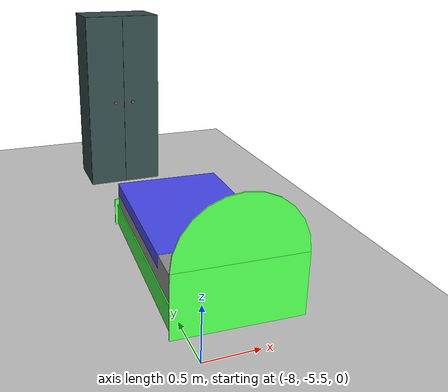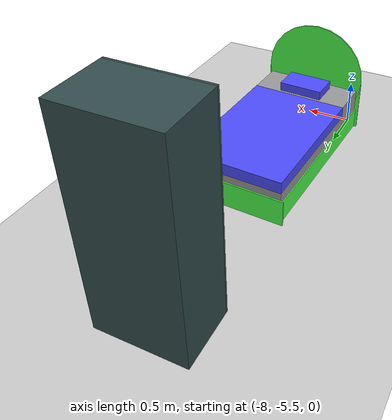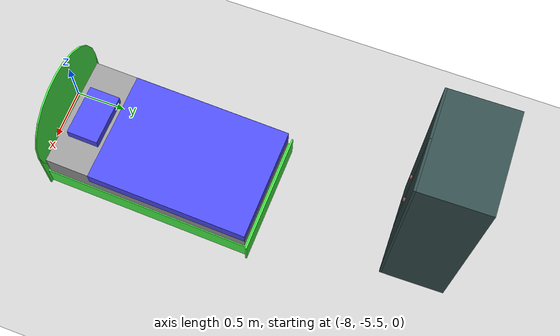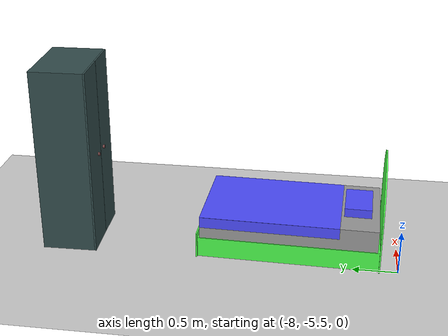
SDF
<sdf version="1.6">
 <world name="default">
  <model name="ground_plane">
   <static>1</static>
   <link name="link">
    <collision name="collision">
     <geometry><plane><normal>0 0 1</normal><size>100 100</size></plane></geometry>
     <surface><friction><ode><mu>100</mu><mu2>50</mu2></ode></friction></surface>
    </collision>
    <visual name="visual">
     <cast_shadows>0</cast_shadows>
     <geometry><plane><normal>0 0 1</normal><size>100 100</size></plane></geometry>
     <material>
      <script><uri>file://media/materials/scripts/gazebo.material</uri><name>Gazebo/Grey</name></script>
     </material>
    </visual>
   </link>
  </model>
  <model name="closet12">
   <link name="link_4">
    <pose>0.1575 -0.07957 1.24924 0 -0 0</pose>
    <visual name="visual">
     <geometry><box><size>0.59 0.882 2.1</size></box></geometry>
     <material>
      <lighting>1</lighting>
      <script><uri>file://media/materials/scripts/gazebo.material</uri><name>Gazebo/Grey</name></script>
      <ambient>0.2 0.3 0.3 1</ambient>
      <diffuse>0.7 0.7 0.7 1</diffuse>
      <specular>1 0.01 0.01 1</specular>
      <emissive>0 0 0 1</emissive>
      <shader type="vertex"><normal_map>__default__</normal_map></shader>
     </material>
    </visual>
    <collision name="collision">
     <geometry><box><size>0.59 0.882 2.1</size></box></geometry>
     <surface>
      <friction>
       <ode><mu>1</mu><mu2>1</mu2><fdir1>0 0 0</fdir1><slip1>0</slip1><slip2>0</slip2></ode>
       <torsional>
        <coefficient>1</coefficient>
        <patch_radius>0</patch_radius>
        <surface_radius>0</surface_radius>
        <use_patch_radius>1</use_patch_radius>
        <ode><slip>0</slip></ode>
       </torsional>
      </friction>
      <bounce><restitution_coefficient>0</restitution_coefficient><threshold>1e+06</threshold></bounce>
      <contact>
       <collide_without_contact>0</collide_without_contact>
       <collide_without_contact_bitmask>1</collide_without_contact_bitmask>
       <collide_bitmask>1</collide_bitmask>
       <ode>
        <soft_cfm>0</soft_cfm>
        <soft_erp>0.2</soft_erp>
        <kp>1e+13</kp>
        <kd>1</kd>
        <max_vel>0.01</max_vel>
        <min_depth>0</min_depth>
       </ode>
       <bullet>
        <split_impulse>1</split_impulse>
        <split_impulse_penetration_threshold>-0.01</split_impulse_penetration_threshold>
        <soft_cfm>0</soft_cfm>
        <soft_erp>0.2</soft_erp>
        <kp>1e+13</kp>
        <kd>1</kd>
       </bullet>
      </contact>
     </surface>
    </collision>
    <inertial>
     <inertia><ixx>1</ixx><ixy>0</ixy><ixz>0</ixz><iyy>1</iyy><iyz>0</iyz><izz>1</izz></inertia>
     <mass>1</mass>
    </inertial>
   </link>
   <link name="link_4_clone">
    <pose>-0.1475 0.14143 1.24924 0 -0 0</pose>
    <visual name="visual">
     <geometry><box><size>0.02 0.44 2.1</size></box></geometry>
     <material>
      <lighting>1</lighting>
      <script><uri>file://media/materials/scripts/gazebo.material</uri><name>Gazebo/Grey</name></script>
      <ambient>0.2 0.3 0.3 1</ambient>
      <diffuse>0.7 0.7 0.7 1</diffuse>
      <specular>1 0.01 0.01 1</specular>
      <emissive>0 0 0 1</emissive>
      <shader type="vertex"><normal_map>__default__</normal_map></shader>
     </material>
    </visual>
    <collision name="collision">
     <geometry><box><size>0.02 0.44 2.1</size></box></geometry>
     <surface>
      <friction>
       <ode><mu>1</mu><mu2>1</mu2><fdir1>0 0 0</fdir1><slip1>0</slip1><slip2>0</slip2></ode>
       <torsional>
        <coefficient>1</coefficient>
        <patch_radius>0</patch_radius>
        <surface_radius>0</surface_radius>
        <use_patch_radius>1</use_patch_radius>
        <ode><slip>0</slip></ode>
       </torsional>
      </friction>
      <bounce><restitution_coefficient>0</restitution_coefficient><threshold>1e+06</threshold></bounce>
      <contact>
       <collide_without_contact>0</collide_without_contact>
       <collide_without_contact_bitmask>1</collide_without_contact_bitmask>
       <collide_bitmask>1</collide_bitmask>
       <ode>
        <soft_cfm>0</soft_cfm>
        <soft_erp>0.2</soft_erp>
        <kp>1e+13</kp>
        <kd>1</kd>
        <max_vel>0.01</max_vel>
        <min_depth>0</min_depth>
       </ode>
       <bullet>
        <split_impulse>1</split_impulse>
        <split_impulse_penetration_threshold>-0.01</split_impulse_penetration_threshold>
        <soft_cfm>0</soft_cfm>
        <soft_erp>0.2</soft_erp>
        <kp>1e+13</kp>
        <kd>1</kd>
       </bullet>
      </contact>
     </surface>
    </collision>
    <inertial>
     <inertia><ixx>1</ixx><ixy>0</ixy><ixz>0</ixz><iyy>1</iyy><iyz>0</iyz><izz>1</izz></inertia>
     <mass>1</mass>
    </inertial>
   </link>
   <link name="link_4_clone_clone">
    <pose>-0.1475 -0.30057 1.24924 0 -0 0</pose>
    <visual name="visual">
     <geometry><box><size>0.02 0.44 2.1</size></box></geometry>
     <material>
      <lighting>1</lighting>
      <script><uri>file://media/materials/scripts/gazebo.material</uri><name>Gazebo/Grey</name></script>
      <ambient>0.2 0.3 0.3 1</ambient>
      <diffuse>0.7 0.7 0.7 1</diffuse>
      <specular>1 0.01 0.01 1</specular>
      <emissive>0 0 0 1</emissive>
      <shader type="vertex"><normal_map>__default__</normal_map></shader>
     </material>
    </visual>
    <collision name="collision">
     <geometry><box><size>0.02 0.44 2.1</size></box></geometry>
     <surface>
      <friction>
       <ode><mu>1</mu><mu2>1</mu2><fdir1>0 0 0</fdir1><slip1>0</slip1><slip2>0</slip2></ode>
       <torsional>
        <coefficient>1</coefficient>
        <patch_radius>0</patch_radius>
        <surface_radius>0</surface_radius>
        <use_patch_radius>1</use_patch_radius>
        <ode><slip>0</slip></ode>
       </torsional>
      </friction>
      <bounce><restitution_coefficient>0</restitution_coefficient><threshold>1e+06</threshold></bounce>
      <contact>
       <collide_without_contact>0</collide_without_contact>
       <collide_without_contact_bitmask>1</collide_without_contact_bitmask>
       <collide_bitmask>1</collide_bitmask>
       <ode>
        <soft_cfm>0</soft_cfm>
        <soft_erp>0.2</soft_erp>
        <kp>1e+13</kp>
        <kd>1</kd>
        <max_vel>0.01</max_vel>
        <min_depth>0</min_depth>
       </ode>
       <bullet>
        <split_impulse>1</split_impulse>
        <split_impulse_penetration_threshold>-0.01</split_impulse_penetration_threshold>
        <soft_cfm>0</soft_cfm>
        <soft_erp>0.2</soft_erp>
        <kp>1e+13</kp>
        <kd>1</kd>
       </bullet>
      </contact>
     </surface>
    </collision>
    <inertial>
     <inertia><ixx>1</ixx><ixy>0</ixy><ixz>0</ixz><iyy>1</iyy><iyz>0</iyz><izz>1</izz></inertia>
     <mass>1</mass>
    </inertial>
   </link>
   <link name="link_6">
    <pose>-0.167502 0.0279 1.24924 0 1.5707 0</pose>
    <visual name="visual">
     <geometry><cylinder><radius>0.02</radius><length>0.02</length></cylinder></geometry>
     <material>
      <lighting>1</lighting>
      <script><uri>file://media/materials/scripts/gazebo.material</uri><name>Gazebo/Grey</name></script>
      <ambient>0.5 0.3 0.3 1</ambient>
      <diffuse>0.7 0.7 0.7 1</diffuse>
      <specular>0.01 0.01 0.01 1</specular>
      <emissive>0 0 0 1</emissive>
      <shader type="vertex"><normal_map>__default__</normal_map></shader>
     </material>
    </visual>
    <collision name="collision">
     <geometry><cylinder><radius>0.02</radius><length>0.02</length></cylinder></geometry>
     <surface>
      <friction>
       <ode><mu>1</mu><mu2>1</mu2><fdir1>0 0 0</fdir1><slip1>0</slip1><slip2>0</slip2></ode>
       <torsional>
        <coefficient>1</coefficient>
        <patch_radius>0</patch_radius>
        <surface_radius>0</surface_radius>
        <use_patch_radius>1</use_patch_radius>
        <ode><slip>0</slip></ode>
       </torsional>
      </friction>
      <bounce><restitution_coefficient>0</restitution_coefficient><threshold>1e+06</threshold></bounce>
      <contact>
       <collide_without_contact>0</collide_without_contact>
       <collide_without_contact_bitmask>1</collide_without_contact_bitmask>
       <collide_bitmask>1</collide_bitmask>
       <ode>
        <soft_cfm>0</soft_cfm>
        <soft_erp>0.2</soft_erp>
        <kp>1e+13</kp>
        <kd>1</kd>
        <max_vel>0.01</max_vel>
        <min_depth>0</min_depth>
       </ode>
       <bullet>
        <split_impulse>1</split_impulse>
        <split_impulse_penetration_threshold>-0.01</split_impulse_penetration_threshold>
        <soft_cfm>0</soft_cfm>
        <soft_erp>0.2</soft_erp>
        <kp>1e+13</kp>
        <kd>1</kd>
       </bullet>
      </contact>
     </surface>
    </collision>
    <inertial>
     <inertia><ixx>1</ixx><ixy>0</ixy><ixz>0</ixz><iyy>1</iyy><iyz>0</iyz><izz>1</izz></inertia>
     <mass>1</mass>
    </inertial>
   </link>
   <link name="link_6_clone">
    <pose>-0.167502 -0.184796 1.24924 0 1.5707 0</pose>
    <visual name="visual">
     <geometry><cylinder><radius>0.02</radius><length>0.02</length></cylinder></geometry>
     <material>
      <lighting>1</lighting>
      <script><uri>file://media/materials/scripts/gazebo.material</uri><name>Gazebo/Grey</name></script>
      <ambient>0.5 0.3 0.3 1</ambient>
      <diffuse>0.7 0.7 0.7 1</diffuse>
      <specular>0.01 0.01 0.01 1</specular>
      <emissive>0 0 0 1</emissive>
      <shader type="vertex"><normal_map>__default__</normal_map></shader>
     </material>
    </visual>
    <collision name="collision">
     <geometry><cylinder><radius>0.02</radius><length>0.02</length></cylinder></geometry>
     <surface>
      <friction>
       <ode><mu>1</mu><mu2>1</mu2><fdir1>0 0 0</fdir1><slip1>0</slip1><slip2>0</slip2></ode>
       <torsional>
        <coefficient>1</coefficient>
        <patch_radius>0</patch_radius>
        <surface_radius>0</surface_radius>
        <use_patch_radius>1</use_patch_radius>
        <ode><slip>0</slip></ode>
       </torsional>
      </friction>
      <bounce><restitution_coefficient>0</restitution_coefficient><threshold>1e+06</threshold></bounce>
      <contact>
       <collide_without_contact>0</collide_without_contact>
       <collide_without_contact_bitmask>1</collide_without_contact_bitmask>
       <collide_bitmask>1</collide_bitmask>
       <ode>
        <soft_cfm>0</soft_cfm>
        <soft_erp>0.2</soft_erp>
        <kp>1e+13</kp>
        <kd>1</kd>
        <max_vel>0.01</max_vel>
        <min_depth>0</min_depth>
       </ode>
       <bullet>
        <split_impulse>1</split_impulse>
        <split_impulse_penetration_threshold>-0.01</split_impulse_penetration_threshold>
        <soft_cfm>0</soft_cfm>
        <soft_erp>0.2</soft_erp>
        <kp>1e+13</kp>
        <kd>1</kd>
       </bullet>
      </contact>
     </surface>
    </collision>
    <inertial>
     <inertia><ixx>1</ixx><ixy>0</ixy><ixz>0</ixz><iyy>1</iyy><iyz>0</iyz><izz>1</izz></inertia>
     <mass>1</mass>
    </inertial>
   </link>
   <joint name="link_4_JOINT_0" type="fixed">
    <parent>link_4</parent>
    <child>link_4_clone_clone</child>
    <physics>
     <ode><limit><cfm>0</cfm><erp>0.2</erp></limit><suspension><cfm>0</cfm><erp>0.2</erp></suspension></ode>
    </physics>
   </joint>
   <joint name="link_4_JOINT_1" type="fixed">
    <parent>link_4</parent>
    <child>link_4_clone</child>
    <physics>
     <ode><limit><cfm>0</cfm><erp>0.2</erp></limit><suspension><cfm>0</cfm><erp>0.2</erp></suspension></ode>
    </physics>
   </joint>
   <joint name="link_4_clone_JOINT_2" type="fixed">
    <parent>link_4_clone</parent>
    <child>link_6</child>
    <physics>
     <ode><limit><cfm>0</cfm><erp>0.2</erp></limit><suspension><cfm>0</cfm><erp>0.2</erp></suspension></ode>
    </physics>
   </joint>
   <joint name="link_4_clone_clone_JOINT_3" type="fixed">
    <parent>link_4_clone_clone</parent>
    <child>link_6_clone</child>
    <physics>
     <ode><limit><cfm>0</cfm><erp>0.2</erp></limit><suspension><cfm>0</cfm><erp>0.2</erp></suspension></ode>
    </physics>
   </joint>
   <joint name="link_4_clone_clone_JOINT_4" type="fixed">
    <parent>link_4_clone_clone</parent>
    <child>link_6_clone</child>
    <physics>
     <ode><limit><cfm>0</cfm><erp>0.2</erp></limit><suspension><cfm>0</cfm><erp>0.2</erp></suspension></ode>
    </physics>
   </joint>
   <static>0</static>
   <pose>-7.79242 -1.9625 -0.11924 -2e-06 -0 1.59015</pose>
  </model>
  <model name="bedbed">
   <link name="link_0">
    <pose>-1.02143 0 -0.2301 0 -0 0</pose>
    <visual name="visual">
     <geometry><box><size>0.015 1.16 0.29</size></box></geometry>
     <material>
      <lighting>1</lighting>
      <script><uri>file://media/materials/scripts/gazebo.material</uri><name>Gazebo/Grey</name></script>
      <ambient>0.3 1 0.3 1</ambient>
      <diffuse>0.7 0.7 0.7 1</diffuse>
      <specular>0.01 0.01 0.01 1</specular>
      <emissive>0 0 0 1</emissive>
      <shader type="vertex"><normal_map>__default__</normal_map></shader>
     </material>
    </visual>
    <collision name="collision">
     <geometry><box><size>0.015 1.16 0.29</size></box></geometry>
     <surface>
      <friction>
       <ode><mu>1</mu><mu2>1</mu2><fdir1>0 0 0</fdir1><slip1>0</slip1><slip2>0</slip2></ode>
       <torsional>
        <coefficient>1</coefficient>
        <patch_radius>0</patch_radius>
        <surface_radius>0</surface_radius>
        <use_patch_radius>1</use_patch_radius>
        <ode><slip>0</slip></ode>
       </torsional>
      </friction>
      <bounce><restitution_coefficient>0</restitution_coefficient><threshold>1e+06</threshold></bounce>
      <contact>
       <collide_without_contact>0</collide_without_contact>
       <collide_without_contact_bitmask>1</collide_without_contact_bitmask>
       <collide_bitmask>1</collide_bitmask>
       <ode>
        <soft_cfm>0</soft_cfm>
        <soft_erp>0.2</soft_erp>
        <kp>1e+13</kp>
        <kd>1</kd>
        <max_vel>0.01</max_vel>
        <min_depth>0</min_depth>
       </ode>
       <bullet>
        <split_impulse>1</split_impulse>
        <split_impulse_penetration_threshold>-0.01</split_impulse_penetration_threshold>
        <soft_cfm>0</soft_cfm>
        <soft_erp>0.2</soft_erp>
        <kp>1e+13</kp>
        <kd>1</kd>
       </bullet>
      </contact>
     </surface>
    </collision>
    <inertial>
     <inertia><ixx>1</ixx><ixy>0</ixy><ixz>0</ixz><iyy>1</iyy><iyz>0</iyz><izz>1</izz></inertia>
     <mass>1</mass>
    </inertial>
   </link>
   <link name="link_1">
    <pose>-0.013931 0 -0.2601 0 -0 0</pose>
    <visual name="visual">
     <geometry><box><size>2 1.1 0.23</size></box></geometry>
     <material>
      <lighting>1</lighting>
      <script><uri>file://media/materials/scripts/gazebo.material</uri><name>Gazebo/Grey</name></script>
      <ambient>0.3 1 0.3 1</ambient>
      <diffuse>0.7 0.7 0.7 1</diffuse>
      <specular>0.01 0.01 0.01 1</specular>
      <emissive>0 0 0 1</emissive>
      <shader type="vertex"><normal_map>__default__</normal_map></shader>
     </material>
    </visual>
    <collision name="collision">
     <geometry><box><size>2 1.1 0.23</size></box></geometry>
     <surface>
      <friction>
       <ode><mu>1</mu><mu2>1</mu2><fdir1>0 0 0</fdir1><slip1>0</slip1><slip2>0</slip2></ode>
       <torsional>
        <coefficient>1</coefficient>
        <patch_radius>0</patch_radius>
        <surface_radius>0</surface_radius>
        <use_patch_radius>1</use_patch_radius>
        <ode><slip>0</slip></ode>
       </torsional>
      </friction>
      <bounce><restitution_coefficient>0</restitution_coefficient><threshold>1e+06</threshold></bounce>
      <contact>
       <collide_without_contact>0</collide_without_contact>
       <collide_without_contact_bitmask>1</collide_without_contact_bitmask>
       <collide_bitmask>1</collide_bitmask>
       <ode>
        <soft_cfm>0</soft_cfm>
        <soft_erp>0.2</soft_erp>
        <kp>1e+13</kp>
        <kd>1</kd>
        <max_vel>0.01</max_vel>
        <min_depth>0</min_depth>
       </ode>
       <bullet>
        <split_impulse>1</split_impulse>
        <split_impulse_penetration_threshold>-0.01</split_impulse_penetration_threshold>
        <soft_cfm>0</soft_cfm>
        <soft_erp>0.2</soft_erp>
        <kp>1e+13</kp>
        <kd>1</kd>
       </bullet>
      </contact>
     </surface>
    </collision>
    <inertial>
     <inertia><ixx>1</ixx><ixy>0</ixy><ixz>0</ixz><iyy>1</iyy><iyz>0</iyz><izz>1</izz></inertia>
     <mass>1</mass>
    </inertial>
   </link>
   <link name="link_2">
    <pose>-0.013931 0 -0.0201 0 -0 0</pose>
    <visual name="visual">
     <geometry><box><size>1.96 1.08 0.25</size></box></geometry>
     <material>
      <lighting>0</lighting>
      <script><uri>file://media/materials/scripts/gazebo.material</uri><name>Gazebo/Grey</name></script>
      <ambient>0.3 0.3 0.3 1</ambient>
      <diffuse>0.7 0.7 0.7 1</diffuse>
      <specular>0.01 0.01 0.01 1</specular>
      <emissive>0 0 0 1</emissive>
      <shader type="vertex"><normal_map>__default__</normal_map></shader>
     </material>
    </visual>
    <collision name="collision">
     <geometry><box><size>1.96 1.08 0.25</size></box></geometry>
     <surface>
      <friction>
       <ode><mu>1</mu><mu2>1</mu2><fdir1>0 0 0</fdir1><slip1>0</slip1><slip2>0</slip2></ode>
       <torsional>
        <coefficient>1</coefficient>
        <patch_radius>0</patch_radius>
        <surface_radius>0</surface_radius>
        <use_patch_radius>1</use_patch_radius>
        <ode><slip>0</slip></ode>
       </torsional>
      </friction>
      <bounce><restitution_coefficient>0</restitution_coefficient><threshold>1e+06</threshold></bounce>
      <contact>
       <collide_without_contact>0</collide_without_contact>
       <collide_without_contact_bitmask>1</collide_without_contact_bitmask>
       <collide_bitmask>1</collide_bitmask>
       <ode>
        <soft_cfm>0</soft_cfm>
        <soft_erp>0.2</soft_erp>
        <kp>1e+13</kp>
        <kd>1</kd>
        <max_vel>0.01</max_vel>
        <min_depth>0</min_depth>
       </ode>
       <bullet>
        <split_impulse>1</split_impulse>
        <split_impulse_penetration_threshold>-0.01</split_impulse_penetration_threshold>
        <soft_cfm>0</soft_cfm>
        <soft_erp>0.2</soft_erp>
        <kp>1e+13</kp>
        <kd>1</kd>
       </bullet>
      </contact>
     </surface>
    </collision>
    <inertial>
     <inertia><ixx>1</ixx><ixy>0</ixy><ixz>0</ixz><iyy>1</iyy><iyz>0</iyz><izz>1</izz></inertia>
     <mass>1</mass>
    </inertial>
   </link>
   <link name="link_3">
    <pose>0.993569 0 -0.0851 0 -0 0</pose>
    <visual name="visual">
     <geometry><box><size>0.015 1.16 0.58</size></box></geometry>
     <material>
      <lighting>1</lighting>
      <script><uri>file://media/materials/scripts/gazebo.material</uri><name>Gazebo/Grey</name></script>
      <ambient>0.3 1 0.3 1</ambient>
      <diffuse>0.7 0.7 0.7 1</diffuse>
      <specular>0.01 0.01 0.01 1</specular>
      <emissive>0 0 0 1</emissive>
      <shader type="vertex"><normal_map>__default__</normal_map></shader>
     </material>
    </visual>
    <collision name="collision">
     <geometry><box><size>0.015 1.16 0.58</size></box></geometry>
     <surface>
      <friction>
       <ode><mu>1</mu><mu2>1</mu2><fdir1>0 0 0</fdir1><slip1>0</slip1><slip2>0</slip2></ode>
       <torsional>
        <coefficient>1</coefficient>
        <patch_radius>0</patch_radius>
        <surface_radius>0</surface_radius>
        <use_patch_radius>1</use_patch_radius>
        <ode><slip>0</slip></ode>
       </torsional>
      </friction>
      <bounce><restitution_coefficient>0</restitution_coefficient><threshold>1e+06</threshold></bounce>
      <contact>
       <collide_without_contact>0</collide_without_contact>
       <collide_without_contact_bitmask>1</collide_without_contact_bitmask>
       <collide_bitmask>1</collide_bitmask>
       <ode>
        <soft_cfm>0</soft_cfm>
        <soft_erp>0.2</soft_erp>
        <kp>1e+13</kp>
        <kd>1</kd>
        <max_vel>0.01</max_vel>
        <min_depth>0</min_depth>
       </ode>
       <bullet>
        <split_impulse>1</split_impulse>
        <split_impulse_penetration_threshold>-0.01</split_impulse_penetration_threshold>
        <soft_cfm>0</soft_cfm>
        <soft_erp>0.2</soft_erp>
        <kp>1e+13</kp>
        <kd>1</kd>
       </bullet>
      </contact>
     </surface>
    </collision>
    <inertial>
     <inertia><ixx>1</ixx><ixy>0</ixy><ixz>0</ixz><iyy>1</iyy><iyz>0</iyz><izz>1</izz></inertia>
     <mass>1</mass>
    </inertial>
   </link>
   <link name="link_4">
    <pose>0.993509 0 0.204901 0 1.5707 0</pose>
    <visual name="visual">
     <geometry><cylinder><radius>0.58</radius><length>0.015</length></cylinder></geometry>
     <material>
      <lighting>1</lighting>
      <script><uri>file://media/materials/scripts/gazebo.material</uri><name>Gazebo/Grey</name></script>
      <ambient>0.3 1 0.3 1</ambient>
      <diffuse>0.7 0.7 0.7 1</diffuse>
      <specular>0.01 0.01 0.01 1</specular>
      <emissive>0 0 0 1</emissive>
      <shader type="vertex"><normal_map>__default__</normal_map></shader>
     </material>
    </visual>
    <collision name="collision">
     <geometry><cylinder><radius>0.58</radius><length>0.015</length></cylinder></geometry>
     <surface>
      <friction>
       <ode><mu>1</mu><mu2>1</mu2><fdir1>0 0 0</fdir1><slip1>0</slip1><slip2>0</slip2></ode>
       <torsional>
        <coefficient>1</coefficient>
        <patch_radius>0</patch_radius>
        <surface_radius>0</surface_radius>
        <use_patch_radius>1</use_patch_radius>
        <ode><slip>0</slip></ode>
       </torsional>
      </friction>
      <bounce><restitution_coefficient>0</restitution_coefficient><threshold>1e+06</threshold></bounce>
      <contact>
       <collide_without_contact>0</collide_without_contact>
       <collide_without_contact_bitmask>1</collide_without_contact_bitmask>
       <collide_bitmask>1</collide_bitmask>
       <ode>
        <soft_cfm>0</soft_cfm>
        <soft_erp>0.2</soft_erp>
        <kp>1e+13</kp>
        <kd>1</kd>
        <max_vel>0.01</max_vel>
        <min_depth>0</min_depth>
       </ode>
       <bullet>
        <split_impulse>1</split_impulse>
        <split_impulse_penetration_threshold>-0.01</split_impulse_penetration_threshold>
        <soft_cfm>0</soft_cfm>
        <soft_erp>0.2</soft_erp>
        <kp>1e+13</kp>
        <kd>1</kd>
       </bullet>
      </contact>
     </surface>
    </collision>
    <inertial>
     <inertia><ixx>1</ixx><ixy>0</ixy><ixz>0</ixz><iyy>1</iyy><iyz>0</iyz><izz>1</izz></inertia>
     <mass>1</mass>
    </inertial>
   </link>
   <link name="link_5">
    <pose>-0.223931 0 0.1054 0 -0 0</pose>
    <visual name="visual">
     <geometry><box><size>1.54 1.082 0.001</size></box></geometry>
     <material>
      <lighting>1</lighting>
      <script><uri>file://media/materials/scripts/gazebo.material</uri><name>Gazebo/Grey</name></script>
      <ambient>0.3 0.3 1 1</ambient>
      <diffuse>0.7 0.7 0.7 1</diffuse>
      <specular>0.01 0.01 0.01 1</specular>
      <emissive>0 0 0 1</emissive>
      <shader type="vertex"><normal_map>__default__</normal_map></shader>
     </material>
    </visual>
    <collision name="collision">
     <geometry><box><size>1.54 1.082 0.001</size></box></geometry>
     <surface>
      <friction>
       <ode><mu>1</mu><mu2>1</mu2><fdir1>0 0 0</fdir1><slip1>0</slip1><slip2>0</slip2></ode>
       <torsional>
        <coefficient>1</coefficient>
        <patch_radius>0</patch_radius>
        <surface_radius>0</surface_radius>
        <use_patch_radius>1</use_patch_radius>
        <ode><slip>0</slip></ode>
       </torsional>
      </friction>
      <bounce><restitution_coefficient>0</restitution_coefficient><threshold>1e+06</threshold></bounce>
      <contact>
       <collide_without_contact>0</collide_without_contact>
       <collide_without_contact_bitmask>1</collide_without_contact_bitmask>
       <collide_bitmask>1</collide_bitmask>
       <ode>
        <soft_cfm>0</soft_cfm>
        <soft_erp>0.2</soft_erp>
        <kp>1e+13</kp>
        <kd>1</kd>
        <max_vel>0.01</max_vel>
        <min_depth>0</min_depth>
       </ode>
       <bullet>
        <split_impulse>1</split_impulse>
        <split_impulse_penetration_threshold>-0.01</split_impulse_penetration_threshold>
        <soft_cfm>0</soft_cfm>
        <soft_erp>0.2</soft_erp>
        <kp>1e+13</kp>
        <kd>1</kd>
       </bullet>
      </contact>
     </surface>
    </collision>
    <inertial>
     <inertia><ixx>1</ixx><ixy>0</ixy><ixz>0</ixz><iyy>1</iyy><iyz>0</iyz><izz>1</izz></inertia>
     <mass>1</mass>
    </inertial>
   </link>
   <link name="link_6">
    <pose>-0.223931 0.5405 0.0434 0 -0 0</pose>
    <visual name="visual">
     <geometry><box><size>1.54 0.001 0.125</size></box></geometry>
     <material>
      <lighting>1</lighting>
      <script><uri>file://media/materials/scripts/gazebo.material</uri><name>Gazebo/Grey</name></script>
      <ambient>0.3 0.3 1 1</ambient>
      <diffuse>0.7 0.7 0.7 1</diffuse>
      <specular>0.01 0.01 0.01 1</specular>
      <emissive>0 0 0 1</emissive>
      <shader type="vertex"><normal_map>__default__</normal_map></shader>
     </material>
    </visual>
    <collision name="collision">
     <geometry><box><size>1.54 0.001 0.125</size></box></geometry>
     <surface>
      <friction>
       <ode><mu>1</mu><mu2>1</mu2><fdir1>0 0 0</fdir1><slip1>0</slip1><slip2>0</slip2></ode>
       <torsional>
        <coefficient>1</coefficient>
        <patch_radius>0</patch_radius>
        <surface_radius>0</surface_radius>
        <use_patch_radius>1</use_patch_radius>
        <ode><slip>0</slip></ode>
       </torsional>
      </friction>
      <bounce><restitution_coefficient>0</restitution_coefficient><threshold>1e+06</threshold></bounce>
      <contact>
       <collide_without_contact>0</collide_without_contact>
       <collide_without_contact_bitmask>1</collide_without_contact_bitmask>
       <collide_bitmask>1</collide_bitmask>
       <ode>
        <soft_cfm>0</soft_cfm>
        <soft_erp>0.2</soft_erp>
        <kp>1e+13</kp>
        <kd>1</kd>
        <max_vel>0.01</max_vel>
        <min_depth>0</min_depth>
       </ode>
       <bullet>
        <split_impulse>1</split_impulse>
        <split_impulse_penetration_threshold>-0.01</split_impulse_penetration_threshold>
        <soft_cfm>0</soft_cfm>
        <soft_erp>0.2</soft_erp>
        <kp>1e+13</kp>
        <kd>1</kd>
       </bullet>
      </contact>
     </surface>
    </collision>
    <inertial>
     <inertia><ixx>1</ixx><ixy>0</ixy><ixz>0</ixz><iyy>1</iyy><iyz>0</iyz><izz>1</izz></inertia>
     <mass>1</mass>
    </inertial>
   </link>
   <link name="link_6_clone">
    <pose>-0.223931 -0.5405 0.0434 0 -0 0</pose>
    <visual name="visual">
     <geometry><box><size>1.54 0.001 0.125</size></box></geometry>
     <material>
      <lighting>1</lighting>
      <script><uri>file://media/materials/scripts/gazebo.material</uri><name>Gazebo/Grey</name></script>
      <ambient>0.3 0.3 1 1</ambient>
      <diffuse>0.7 0.7 0.7 1</diffuse>
      <specular>0.01 0.01 0.01 1</specular>
      <emissive>0 0 0 1</emissive>
      <shader type="vertex"><normal_map>__default__</normal_map></shader>
     </material>
    </visual>
    <collision name="collision">
     <geometry><box><size>1.54 0.001 0.125</size></box></geometry>
     <surface>
      <friction>
       <ode><mu>1</mu><mu2>1</mu2><fdir1>0 0 0</fdir1><slip1>0</slip1><slip2>0</slip2></ode>
       <torsional>
        <coefficient>1</coefficient>
        <patch_radius>0</patch_radius>
        <surface_radius>0</surface_radius>
        <use_patch_radius>1</use_patch_radius>
        <ode><slip>0</slip></ode>
       </torsional>
      </friction>
      <bounce><restitution_coefficient>0</restitution_coefficient><threshold>1e+06</threshold></bounce>
      <contact>
       <collide_without_contact>0</collide_without_contact>
       <collide_without_contact_bitmask>1</collide_without_contact_bitmask>
       <collide_bitmask>1</collide_bitmask>
       <ode>
        <soft_cfm>0</soft_cfm>
        <soft_erp>0.2</soft_erp>
        <kp>1e+13</kp>
        <kd>1</kd>
        <max_vel>0.01</max_vel>
        <min_depth>0</min_depth>
       </ode>
       <bullet>
        <split_impulse>1</split_impulse>
        <split_impulse_penetration_threshold>-0.01</split_impulse_penetration_threshold>
        <soft_cfm>0</soft_cfm>
        <soft_erp>0.2</soft_erp>
        <kp>1e+13</kp>
        <kd>1</kd>
       </bullet>
      </contact>
     </surface>
    </collision>
    <inertial>
     <inertia><ixx>1</ixx><ixy>0</ixy><ixz>0</ixz><iyy>1</iyy><iyz>0</iyz><izz>1</izz></inertia>
     <mass>1</mass>
    </inertial>
   </link>
   <link name="link_7">
    <pose>-0.993431 0 0.0434 0 -0 0</pose>
    <visual name="visual">
     <geometry><box><size>0.001 1.082 0.125</size></box></geometry>
     <material>
      <lighting>1</lighting>
      <script><uri>file://media/materials/scripts/gazebo.material</uri><name>Gazebo/Grey</name></script>
      <ambient>0.3 0.3 1 1</ambient>
      <diffuse>0.7 0.7 0.7 1</diffuse>
      <specular>0.01 0.01 0.01 1</specular>
      <emissive>0 0 0 1</emissive>
      <shader type="vertex"><normal_map>__default__</normal_map></shader>
     </material>
    </visual>
    <collision name="collision">
     <geometry><box><size>0.001 1.082 0.125</size></box></geometry>
     <surface>
      <friction>
       <ode><mu>1</mu><mu2>1</mu2><fdir1>0 0 0</fdir1><slip1>0</slip1><slip2>0</slip2></ode>
       <torsional>
        <coefficient>1</coefficient>
        <patch_radius>0</patch_radius>
        <surface_radius>0</surface_radius>
        <use_patch_radius>1</use_patch_radius>
        <ode><slip>0</slip></ode>
       </torsional>
      </friction>
      <bounce><restitution_coefficient>0</restitution_coefficient><threshold>1e+06</threshold></bounce>
      <contact>
       <collide_without_contact>0</collide_without_contact>
       <collide_without_contact_bitmask>1</collide_without_contact_bitmask>
       <collide_bitmask>1</collide_bitmask>
       <ode>
        <soft_cfm>0</soft_cfm>
        <soft_erp>0.2</soft_erp>
        <kp>1e+13</kp>
        <kd>1</kd>
        <max_vel>0.01</max_vel>
        <min_depth>0</min_depth>
       </ode>
       <bullet>
        <split_impulse>1</split_impulse>
        <split_impulse_penetration_threshold>-0.01</split_impulse_penetration_threshold>
        <soft_cfm>0</soft_cfm>
        <soft_erp>0.2</soft_erp>
        <kp>1e+13</kp>
        <kd>1</kd>
       </bullet>
      </contact>
     </surface>
    </collision>
    <inertial>
     <inertia><ixx>1</ixx><ixy>0</ixy><ixz>0</ixz><iyy>1</iyy><iyz>0</iyz><izz>1</izz></inertia>
     <mass>1</mass>
    </inertial>
   </link>
   <link name="link_8">
    <pose>0.727434 0 0.1549 0 -0 0</pose>
    <visual name="visual">
     <geometry><box><size>0.3 0.49 0.1</size></box></geometry>
     <material>
      <lighting>1</lighting>
      <script><uri>file://media/materials/scripts/gazebo.material</uri><name>Gazebo/Grey</name></script>
      <ambient>0.3 0.3 1 1</ambient>
      <diffuse>0.7 0.7 0.7 1</diffuse>
      <specular>0.01 0.01 0.01 1</specular>
      <emissive>0 0 0 1</emissive>
      <shader type="vertex"><normal_map>__default__</normal_map></shader>
     </material>
    </visual>
    <collision name="collision">
     <geometry><box><size>0.3 0.49 0.1</size></box></geometry>
     <surface>
      <friction>
       <ode><mu>1</mu><mu2>1</mu2><fdir1>0 0 0</fdir1><slip1>0</slip1><slip2>0</slip2></ode>
       <torsional>
        <coefficient>1</coefficient>
        <patch_radius>0</patch_radius>
        <surface_radius>0</surface_radius>
        <use_patch_radius>1</use_patch_radius>
        <ode><slip>0</slip></ode>
       </torsional>
      </friction>
      <bounce><restitution_coefficient>0</restitution_coefficient><threshold>1e+06</threshold></bounce>
      <contact>
       <collide_without_contact>0</collide_without_contact>
       <collide_without_contact_bitmask>1</collide_without_contact_bitmask>
       <collide_bitmask>1</collide_bitmask>
       <ode>
        <soft_cfm>0</soft_cfm>
        <soft_erp>0.2</soft_erp>
        <kp>1e+13</kp>
        <kd>1</kd>
        <max_vel>0.01</max_vel>
        <min_depth>0</min_depth>
       </ode>
       <bullet>
        <split_impulse>1</split_impulse>
        <split_impulse_penetration_threshold>-0.01</split_impulse_penetration_threshold>
        <soft_cfm>0</soft_cfm>
        <soft_erp>0.2</soft_erp>
        <kp>1e+13</kp>
        <kd>1</kd>
       </bullet>
      </contact>
     </surface>
    </collision>
    <inertial>
     <inertia><ixx>1</ixx><ixy>0</ixy><ixz>0</ixz><iyy>1</iyy><iyz>0</iyz><izz>1</izz></inertia>
     <mass>1</mass>
    </inertial>
   </link>
   <joint name="link_1_JOINT_0" type="fixed">
    <parent>link_1</parent>
    <child>link_0</child>
    <physics>
     <ode><limit><cfm>0</cfm><erp>0.2</erp></limit><suspension><cfm>0</cfm><erp>0.2</erp></suspension></ode>
    </physics>
   </joint>
   <joint name="link_1_JOINT_2" type="fixed">
    <parent>link_1</parent>
    <child>link_3</child>
    <physics>
     <ode><limit><cfm>0</cfm><erp>0.2</erp></limit><suspension><cfm>0</cfm><erp>0.2</erp></suspension></ode>
    </physics>
   </joint>
   <joint name="link_1_JOINT_5" type="fixed">
    <parent>link_1</parent>
    <child>link_2</child>
    <physics>
     <ode><limit><cfm>0</cfm><erp>0.2</erp></limit><suspension><cfm>0</cfm><erp>0.2</erp></suspension></ode>
    </physics>
   </joint>
   <joint name="link_2_JOINT_10" type="fixed">
    <parent>link_2</parent>
    <child>link_8</child>
    <physics>
     <ode><limit><cfm>0</cfm><erp>0.2</erp></limit><suspension><cfm>0</cfm><erp>0.2</erp></suspension></ode>
    </physics>
   </joint>
   <joint name="link_2_JOINT_6" type="fixed">
    <parent>link_2</parent>
    <child>link_5</child>
    <physics>
     <ode><limit><cfm>0</cfm><erp>0.2</erp></limit><suspension><cfm>0</cfm><erp>0.2</erp></suspension></ode>
    </physics>
   </joint>
   <joint name="link_3_JOINT_3" type="fixed">
    <parent>link_3</parent>
    <child>link_4</child>
    <physics>
     <ode><limit><cfm>0</cfm><erp>0.2</erp></limit><suspension><cfm>0</cfm><erp>0.2</erp></suspension></ode>
    </physics>
   </joint>
   <joint name="link_5_JOINT_7" type="fixed">
    <parent>link_5</parent>
    <child>link_6_clone</child>
    <physics>
     <ode><limit><cfm>0</cfm><erp>0.2</erp></limit><suspension><cfm>0</cfm><erp>0.2</erp></suspension></ode>
    </physics>
   </joint>
   <joint name="link_5_JOINT_8" type="fixed">
    <parent>link_5</parent>
    <child>link_6</child>
    <physics>
     <ode><limit><cfm>0</cfm><erp>0.2</erp></limit><suspension><cfm>0</cfm><erp>0.2</erp></suspension></ode>
    </physics>
   </joint>
   <joint name="link_5_JOINT_9" type="fixed">
    <parent>link_5</parent>
    <child>link_7</child>
    <physics>
     <ode><limit><cfm>0</cfm><erp>0.2</erp></limit><suspension><cfm>0</cfm><erp>0.2</erp></suspension></ode>
    </physics>
   </joint>
   <static>0</static>
   <pose>-7.56926 -4.3088 0.455101 -2e-06 -0 -1.59769</pose>
  </model>
 </world>
</sdf>
